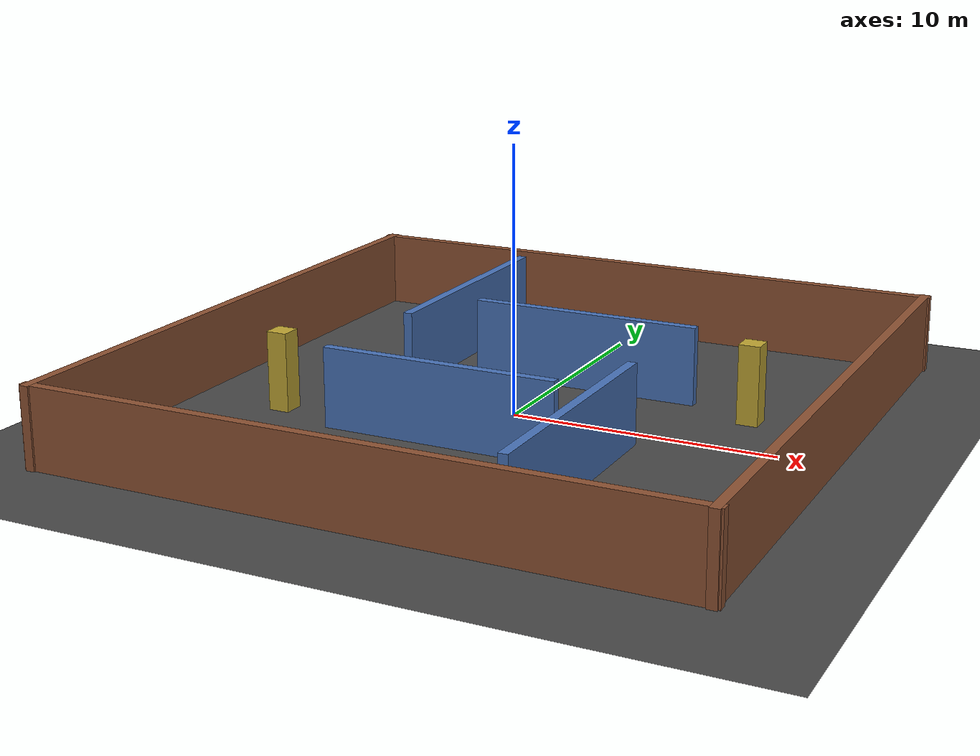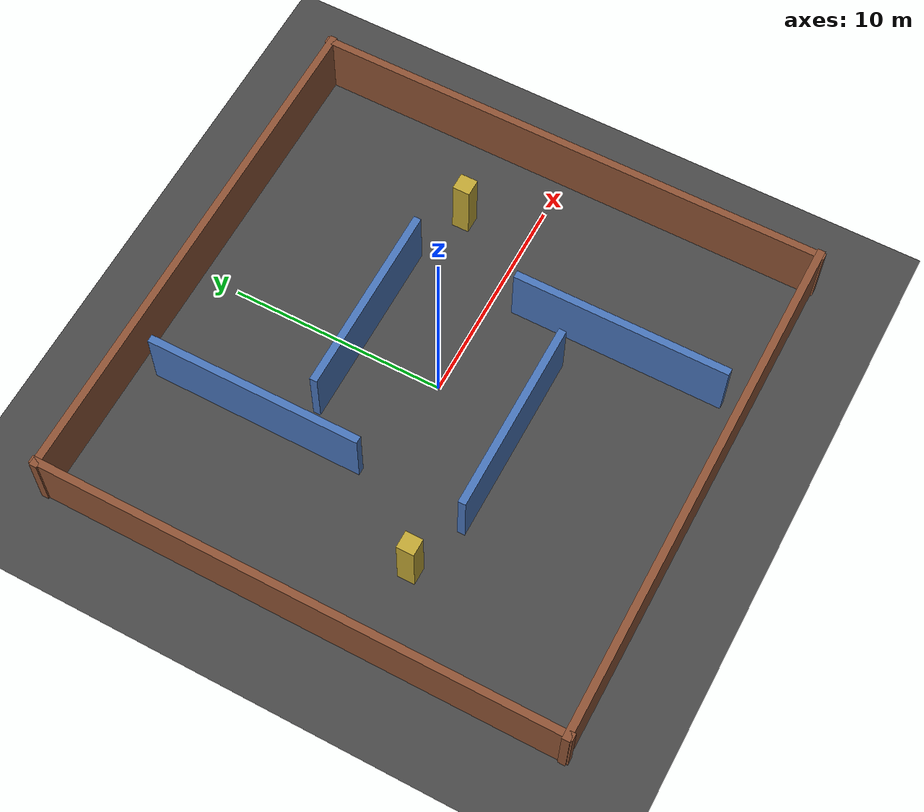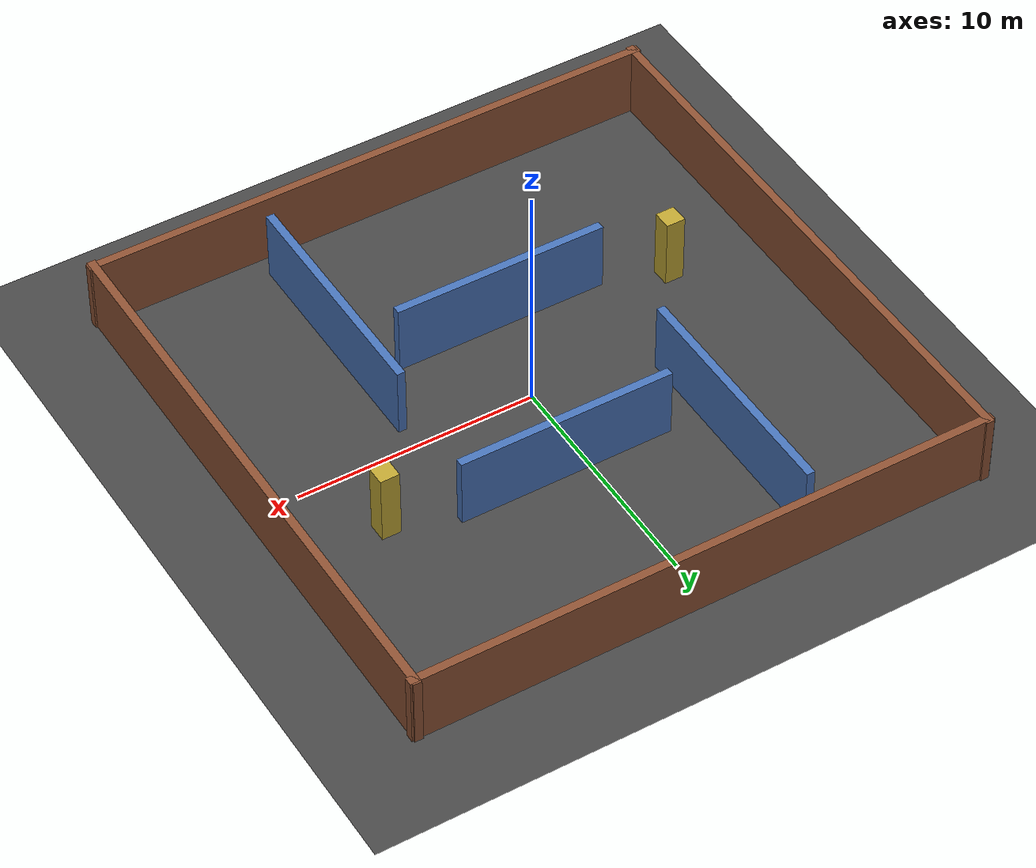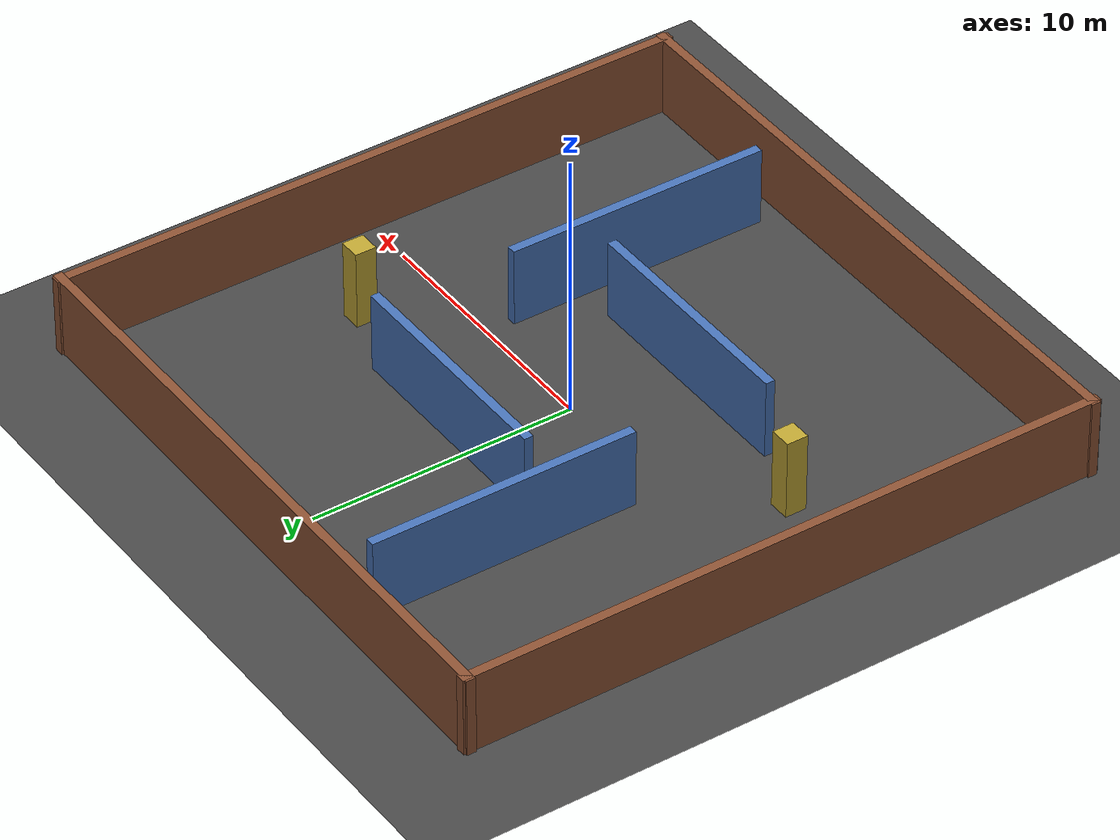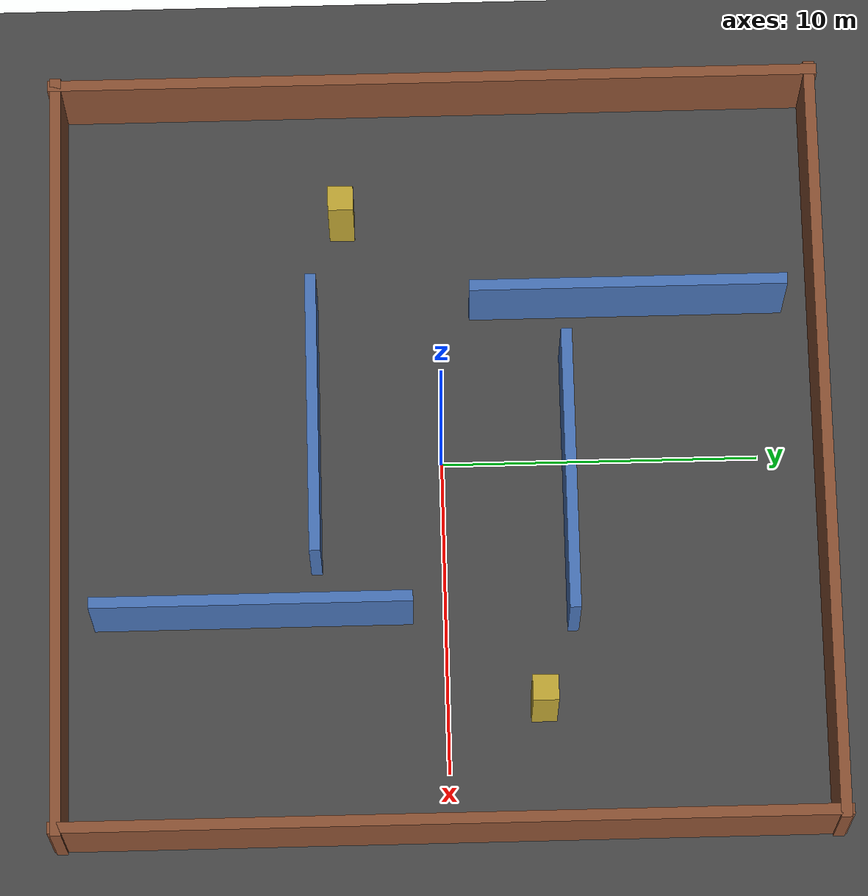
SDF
<?xml version="1.0"?>
<sdf version="1.6">
  <world name="lab_corridor_01">
    <light name="sun" type="directional">
      <pose>0 0 10 0 0 0</pose>
      <diffuse>0.8 0.8 0.8 1</diffuse>
      <specular>0.2 0.2 0.2 1</specular>
      <direction>-0.5 0.1 -0.9</direction>
    </light>
    <gravity>0 0 -9.8</gravity>
    <magnetic_field>6e-06 2.3e-05 -4.2e-05</magnetic_field>
    <atmosphere type="adiabatic"/>
    <physics name="default_physics" default="0" type="ode">
      <max_step_size>0.001</max_step_size>
      <real_time_factor>1</real_time_factor>
      <real_time_update_rate>1000</real_time_update_rate>
    </physics>
    <scene>
      <ambient>0.45 0.45 0.45 1</ambient>
      <background>0.65 0.65 0.65 1</background>
      <shadows>1</shadows>
    </scene>

    <model name="ground_plane">
      <static>true</static>
      <link name="link">
        <collision name="collision">
          <geometry><plane><normal>0 0 1</normal><size>100 100</size></plane></geometry>
          <surface><friction><ode><mu>100</mu><mu2>50</mu2></ode></friction></surface>
        </collision>
        <visual name="visual">
          <geometry><plane><normal>0 0 1</normal><size>100 100</size></plane></geometry>
          <material><ambient>0.18 0.18 0.18 1</ambient><diffuse>0.28 0.28 0.28 1</diffuse></material>
        </visual>
      </link>
    </model>

    <!-- 24 m square, with two offset barriers forming a broad S-shaped route. -->
    <model name="corridor_architecture">
      <static>true</static>
      <link name="north"><pose>0 12 1.5 0 0 0</pose><collision name="c"><geometry><box><size>24.5 0.35 3</size></box></geometry></collision><visual name="v"><geometry><box><size>24.5 0.35 3</size></box></geometry><material><diffuse>0.55 0.32 0.20 1</diffuse></material></visual></link>
      <link name="south"><pose>0 -12 1.5 0 0 0</pose><collision name="c"><geometry><box><size>24.5 0.35 3</size></box></geometry></collision><visual name="v"><geometry><box><size>24.5 0.35 3</size></box></geometry><material><diffuse>0.55 0.32 0.20 1</diffuse></material></visual></link>
      <link name="west"><pose>-12 0 1.5 0 0 0</pose><collision name="c"><geometry><box><size>0.35 24.5 3</size></box></geometry></collision><visual name="v"><geometry><box><size>0.35 24.5 3</size></box></geometry><material><diffuse>0.55 0.32 0.20 1</diffuse></material></visual></link>
      <link name="east"><pose>12 0 1.5 0 0 0</pose><collision name="c"><geometry><box><size>0.35 24.5 3</size></box></geometry></collision><visual name="v"><geometry><box><size>0.35 24.5 3</size></box></geometry><material><diffuse>0.55 0.32 0.20 1</diffuse></material></visual></link>
      <link name="upper_barrier"><pose>-5 6 1.5 0 0 0</pose><collision name="c"><geometry><box><size>0.35 10 3</size></box></geometry></collision><visual name="v"><geometry><box><size>0.35 10 3</size></box></geometry><material><diffuse>0.28 0.45 0.72 1</diffuse></material></visual></link>
      <link name="lower_barrier"><pose>5 -6 1.5 0 0 0</pose><collision name="c"><geometry><box><size>0.35 10 3</size></box></geometry></collision><visual name="v"><geometry><box><size>0.35 10 3</size></box></geometry><material><diffuse>0.28 0.45 0.72 1</diffuse></material></visual></link>
      <link name="upper_cross"><pose>1 4 1.5 0 0 0</pose><collision name="c"><geometry><box><size>9 0.35 3</size></box></geometry></collision><visual name="v"><geometry><box><size>9 0.35 3</size></box></geometry><material><diffuse>0.28 0.45 0.72 1</diffuse></material></visual></link>
      <link name="lower_cross"><pose>-1 -4 1.5 0 0 0</pose><collision name="c"><geometry><box><size>9 0.35 3</size></box></geometry></collision><visual name="v"><geometry><box><size>9 0.35 3</size></box></geometry><material><diffuse>0.28 0.45 0.72 1</diffuse></material></visual></link>
      <link name="pillar_nw"><pose>-8 -3 1.5 0 0 0</pose><collision name="c"><geometry><box><size>0.8 0.8 3</size></box></geometry></collision><visual name="v"><geometry><box><size>0.8 0.8 3</size></box></geometry><material><diffuse>0.75 0.65 0.20 1</diffuse></material></visual></link>
      <link name="pillar_se"><pose>8 3 1.5 0 0 0</pose><collision name="c"><geometry><box><size>0.8 0.8 3</size></box></geometry></collision><visual name="v"><geometry><box><size>0.8 0.8 3</size></box></geometry><material><diffuse>0.75 0.65 0.20 1</diffuse></material></visual></link>
    </model>
  </world>
</sdf>
